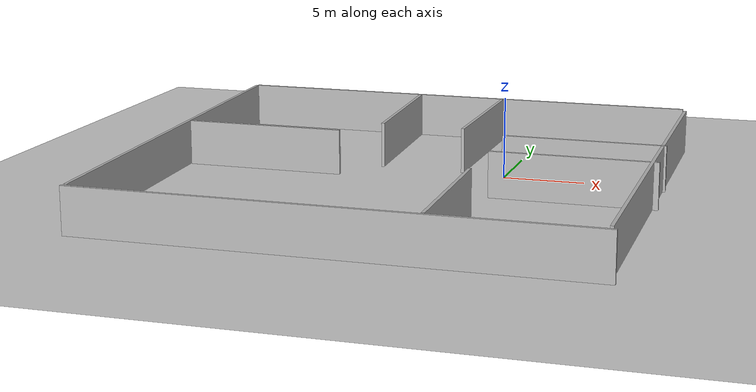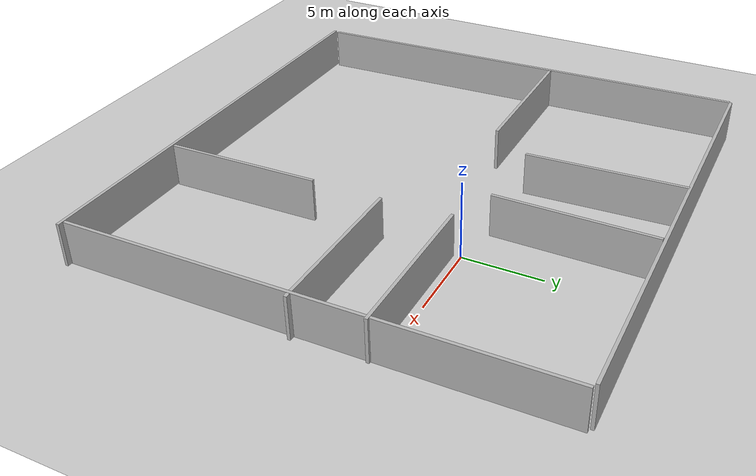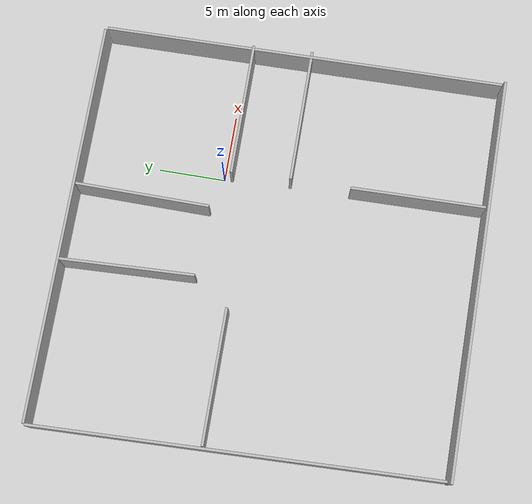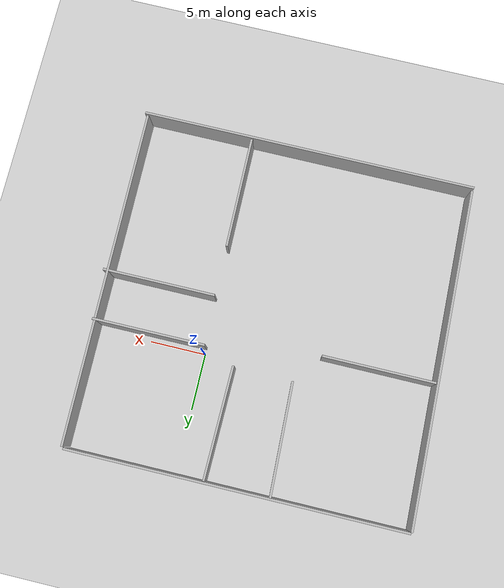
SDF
<sdf version="1.4">
 <world name="default">
  <light name="sun" type="directional">
   <pose>0 0 10 0 -0 0</pose>
   <diffuse>0.8 0.8 0.8 1</diffuse>
   <specular>0.2 0.2 0.2 1</specular>
   <attenuation>
    <range>1000</range>
    <constant>0.9</constant>
    <linear>0.01</linear>
    <quadratic>0.001</quadratic>
   </attenuation>
   <direction>-0.5 0.1 -0.9</direction>
  </light>
  <model name="ground_plane">
   <static>1</static>
   <link name="link">
    <collision name="collision">
     <geometry><plane><normal>0 0 1</normal><size>100 100</size></plane></geometry>
     <surface><friction><ode><mu>100</mu><mu2>50</mu2></ode></friction></surface>
    </collision>
    <visual name="visual">
     <cast_shadows>0</cast_shadows>
     <geometry><plane><normal>0 0 1</normal><size>100 100</size></plane></geometry>
     <material>
      <script><uri>file://media/materials/scripts/gazebo.material</uri><name>Gazebo/Grey</name></script>
     </material>
    </visual>
    <velocity_decay><linear>0</linear><angular>0</angular></velocity_decay>
   </link>
  </model>
  <physics type="ode">
   <max_step_size>0.001</max_step_size>
   <real_time_factor>1</real_time_factor>
   <real_time_update_rate>1000</real_time_update_rate>
   <gravity>0 0 -9.8</gravity>
  </physics>
  <scene><ambient>0.4 0.4 0.4 1</ambient><background>0.7 0.7 0.7 1</background><shadows>1</shadows></scene>
  <spherical_coordinates>
   <surface_model>EARTH_WGS84</surface_model>
   <latitude_deg>0</latitude_deg>
   <longitude_deg>0</longitude_deg>
   <elevation>0</elevation>
   <heading_deg>0</heading_deg>
  </spherical_coordinates>
  <model name="house">
   <static>1</static>
   <link name="link">
    <pose>0 0 1.4 0 -0 0</pose>
    <collision name="collision"><geometry><box><size>30 0.2 2.8</size></box></geometry></collision>
    <visual name="visual">
     <cast_shadows>0</cast_shadows>
     <geometry><box><size>30 0.2 2.8</size></box></geometry>
     <material>
      <script>
       <uri>model://house/materials/scripts</uri>
       <uri>model://house/materials/textures</uri>
       <name>vrc/house_wall2</name>
      </script>
     </material>
    </visual>
    <velocity_decay><linear>0</linear><angular>0</angular></velocity_decay>
   </link>
   <pose>-5.52092 10.7279 0 0 -0 0</pose>
  </model>
  <model name="house_0">
   <static>1</static>
   <link name="link">
    <pose>0 0 1.4 0 -0 0</pose>
    <collision name="collision"><geometry><box><size>30 0.2 2.8</size></box></geometry></collision>
    <visual name="visual">
     <cast_shadows>0</cast_shadows>
     <geometry><box><size>30 0.2 2.8</size></box></geometry>
     <material>
      <script>
       <uri>model://house/materials/scripts</uri>
       <uri>model://house/materials/textures</uri>
       <name>vrc/house_wall1</name>
      </script>
     </material>
    </visual>
    <velocity_decay><linear>0</linear><angular>0</angular></velocity_decay>
   </link>
   <pose>9.79154 -4.42227 0 0.006387 0.005422 1.58268</pose>
  </model>
  <model name="house_1">
   <static>1</static>
   <link name="link">
    <pose>0 0 1.4 0 -0 0</pose>
    <collision name="collision"><geometry><box><size>30 0.2 2.8</size></box></geometry></collision>
    <visual name="visual">
     <cast_shadows>0</cast_shadows>
     <geometry><box><size>30 0.2 2.8</size></box></geometry>
     <material>
      <script>
       <uri>model://house/materials/scripts</uri>
       <uri>model://house/materials/textures</uri>
       <name>vrc/house_wall3</name>
      </script>
     </material>
    </visual>
    <velocity_decay><linear>0</linear><angular>0</angular></velocity_decay>
   </link>
   <pose>-4.70828 -19.6385 0 0 -0 0</pose>
  </model>
  <model name="house_2">
   <static>1</static>
   <link name="link">
    <pose>0 0 1.4 0 -0 0</pose>
    <collision name="collision"><geometry><box><size>30 0.2 2.8</size></box></geometry></collision>
    <visual name="visual">
     <cast_shadows>0</cast_shadows>
     <geometry><box><size>30 0.2 2.8</size></box></geometry>
     <material>
      <script>
       <uri>model://house/materials/scripts</uri>
       <uri>model://house/materials/textures</uri>
       <name>vrc/house_wall4</name>
      </script>
     </material>
    </visual>
    <velocity_decay><linear>0</linear><angular>0</angular></velocity_decay>
   </link>
   <pose>-20.0727 -4.34365 0 0 0 -1.53771</pose>
  </model>
  <model name="house_3">
   <static>1</static>
   <link name="link">
    <pose>0 0 1.4 0 -0 0</pose>
    <collision name="collision"><geometry><box><size>10 0.2 2.8</size></box></geometry></collision>
    <visual name="visual">
     <cast_shadows>0</cast_shadows>
     <geometry><box><size>10 0.2 2.8</size></box></geometry>
     <material>
      <script>
       <uri>model://house/materials/scripts</uri>
       <uri>model://house/materials/textures</uri>
       <name>vrc/house_wall5</name>
      </script>
     </material>
    </visual>
    <velocity_decay><linear>0</linear><angular>0</angular></velocity_decay>
   </link>
   <pose>0.3621 -14.4458 0 0 0 -1.55254</pose>
  </model>
  <model name="house_4">
   <static>1</static>
   <link name="link">
    <pose>0 0 1.4 0 -0 0</pose>
    <collision name="collision"><geometry><box><size>10 0.2 2.8</size></box></geometry></collision>
    <visual name="visual">
     <cast_shadows>0</cast_shadows>
     <geometry><box><size>10 0.2 2.8</size></box></geometry>
     <material>
      <script>
       <uri>model://house/materials/scripts</uri>
       <uri>model://house/materials/textures</uri>
       <name>vrc/house_wall6</name>
      </script>
     </material>
    </visual>
    <velocity_decay><linear>0</linear><angular>0</angular></velocity_decay>
   </link>
   <pose>5.22708 -4.9706 0 0 -0 0</pose>
  </model>
  <model name="house_5">
   <static>1</static>
   <link name="link">
    <pose>0 0 1.4 0 -0 0</pose>
    <collision name="collision"><geometry><box><size>10 0.2 2.8</size></box></geometry></collision>
    <visual name="visual">
     <cast_shadows>0</cast_shadows>
     <geometry><box><size>10 0.2 2.8</size></box></geometry>
     <material>
      <script>
       <uri>model://house/materials/scripts</uri>
       <uri>model://house/materials/textures</uri>
       <name>vrc/house_wall7</name>
      </script>
     </material>
    </visual>
    <velocity_decay><linear>0</linear><angular>0</angular></velocity_decay>
   </link>
   <pose>-15 -2 0 0 -0 0</pose>
  </model>
  <model name="house_7">
   <static>1</static>
   <link name="link">
    <pose>0 0 1.4 0 -0 0</pose>
    <collision name="collision"><geometry><box><size>10 0.2 2.8</size></box></geometry></collision>
    <visual name="visual">
     <cast_shadows>0</cast_shadows>
     <geometry><box><size>10 0.2 2.8</size></box></geometry>
     <material>
      <script>
       <uri>model://house/materials/scripts</uri>
       <uri>model://house/materials/textures</uri>
       <name>vrc/house_wall8</name>
      </script>
     </material>
    </visual>
    <velocity_decay><linear>0</linear><angular>0</angular></velocity_decay>
   </link>
   <pose>-8.25871 5.69463 0 0 0 -1.52937</pose>
  </model>
  <model name="house_8">
   <static>1</static>
   <link name="link">
    <pose>0 0 1.4 0 -0 0</pose>
    <collision name="collision"><geometry><box><size>10 0.2 2.8</size></box></geometry></collision>
    <visual name="visual">
     <cast_shadows>0</cast_shadows>
     <geometry><box><size>10 0.2 2.8</size></box></geometry>
     <material>
      <script>
       <uri>model://house/materials/scripts</uri>
       <uri>model://house/materials/textures</uri>
       <name>vrc/house_wall9</name>
      </script>
     </material>
    </visual>
    <velocity_decay><linear>0</linear><angular>0</angular></velocity_decay>
   </link>
   <pose>5 -0.559734 0 0 -0 0</pose>
  </model>
  <model name="house_9">
   <static>1</static>
   <link name="link">
    <pose>0 0 1.4 0 -0 0</pose>
    <collision name="collision"><geometry><box><size>10 0.2 2.8</size></box></geometry></collision>
    <visual name="visual">
     <cast_shadows>0</cast_shadows>
     <geometry><box><size>10 0.2 2.8</size></box></geometry>
     <material>
      <script>
       <uri>model://house/materials/scripts</uri>
       <uri>model://house/materials/textures</uri>
       <name>vrc/house_wall10</name>
      </script>
     </material>
    </visual>
    <velocity_decay><linear>0</linear><angular>0</angular></velocity_decay>
   </link>
   <pose>-2.75767 5.5892 0 0 0 -1.58093</pose>
  </model>
 </world>
</sdf>
